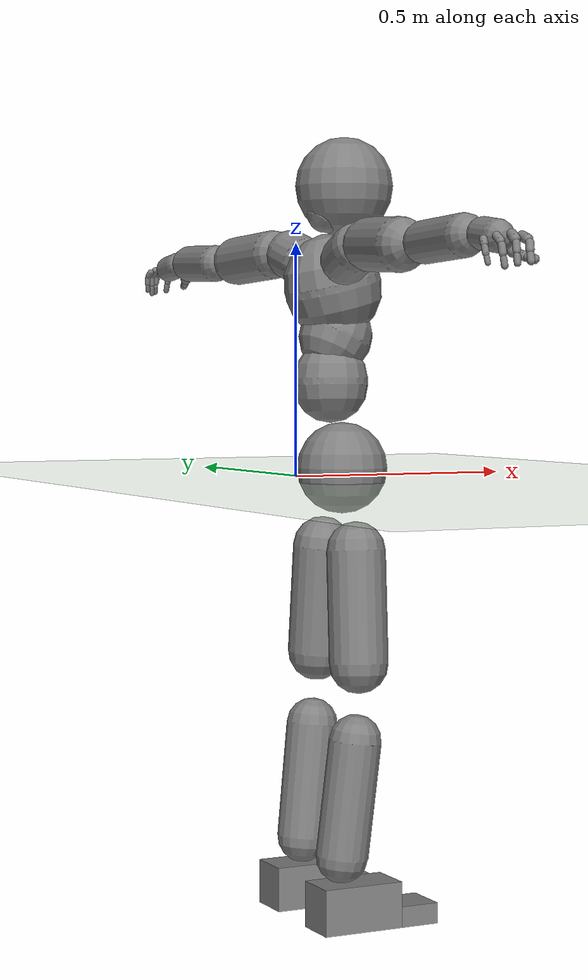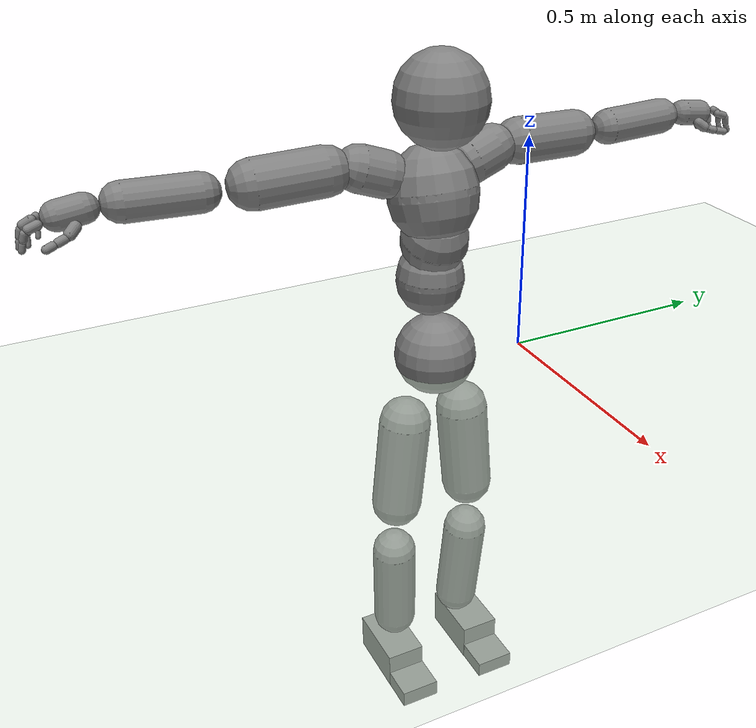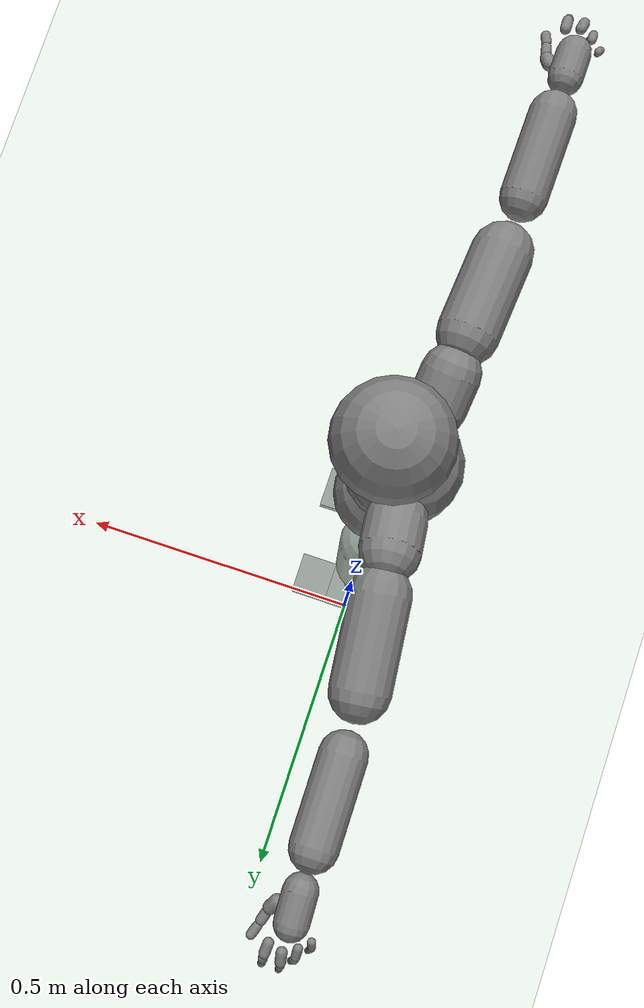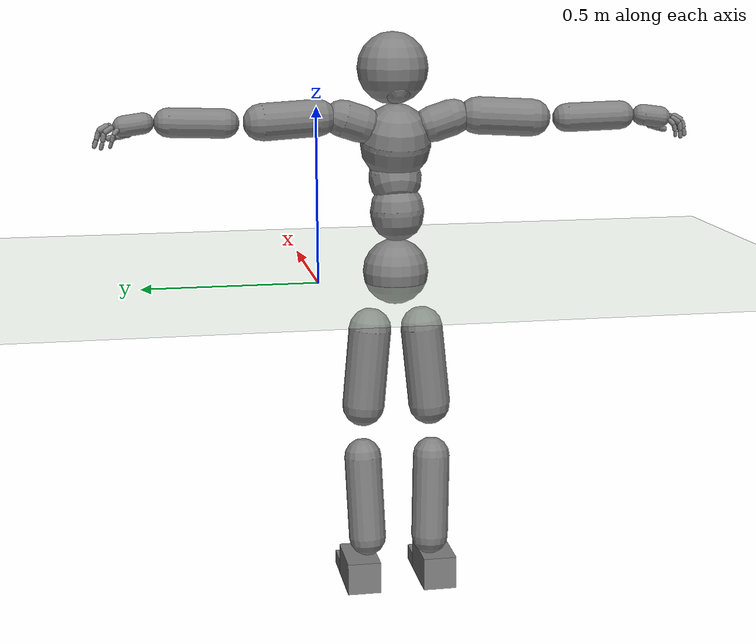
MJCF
<mujoco model="humanoid">
  <compiler coordinate="local"/>
  <statistic extent="2" center="0 0 1"/>
  <option timestep="0.00555"/>
  <default>
    <motor ctrlrange="-1 1" ctrllimited="true"/>
    <geom type="capsule" condim="1" friction="1.0 0.05 0.05" solimp=".9 .99 .003" solref=".015 1"/>
    <joint type="hinge" damping="0.1" stiffness="5" armature=".007" limited="true" solimplimit="0 .99 .01"/>
    <site size=".04" group="3"/>
    <default class="force-torque">
      <site type="box" size=".01 .01 .02" rgba="1 0 0 1"/>
    </default>
    <default class="touch">
      <site type="capsule" rgba="0 0 1 .3"/>
    </default>
  </default>
  <asset>
    <texture type="skybox" builtin="gradient" rgb1=".4 .5 .6" rgb2="0 0 0" width="100" height="100"/>
    <texture builtin="flat" height="1278" mark="cross" markrgb="1 1 1" name="texgeom" random="0.01" rgb1="0.8 0.6 0.4" rgb2="0.8 0.6 0.4" type="cube" width="127"/>
    <texture builtin="checker" height="100" name="texplane" rgb1="0 0 0" rgb2="0.8 0.8 0.8" type="2d" width="100"/>
    <material name="MatPlane" reflectance="0.5" shininess="1" specular="1" texrepeat="60 60" texture="texplane"/>
    <material name="geom" texture="texgeom" texuniform="true"/>
  </asset>
  <worldbody>
    <light cutoff="100" diffuse="1 1 1" dir="-0 0 -1.3" directional="true" exponent="1" pos="0 0 1.3" specular=".1 .1 .1"/>
    <geom conaffinity="1" condim="3" name="floor" pos="0 0 0" rgba="0.8 0.9 0.8 1" size="100 100 .2" type="plane" material="MatPlane"/>
    <body name="Pelvis" pos="-0.0018 -0.2233 0.0282">
      <freejoint name="Pelvis"/>
      <geom type="sphere" contype="1" conaffinity="1" density="4629.6296296296305" size="0.0942" pos="0.0000 0.0000 0.0000"/>
      <body name="L_Hip" pos="-0.0068 0.0695 -0.0914">
        <joint name="L_Hip_x" type="hinge" pos="0 0 0" axis="1 0 0" stiffness="500" damping="50" armature="0.02" range="-180.0000 180.0000"/>
        <joint name="L_Hip_y" type="hinge" pos="0 0 0" axis="0 1 0" stiffness="500" damping="50" armature="0.02" range="-180.0000 180.0000"/>
        <joint name="L_Hip_z" type="hinge" pos="0 0 0" axis="0 0 1" stiffness="500" damping="50" armature="0.02" range="-180.0000 180.0000"/>
        <geom type="capsule" contype="1" conaffinity="1" density="2040.816327" fromto="-0.0009 0.0069 -0.0750 -0.0036 0.0274 -0.3002" size="0.0615"/>
        <body name="L_Knee" pos="-0.0045 0.0343 -0.3752">
          <joint name="L_Knee_x" type="hinge" pos="0 0 0" axis="1 0 0" stiffness="500" damping="50" armature="0.02" range="-180.0000 180.0000"/>
          <joint name="L_Knee_y" type="hinge" pos="0 0 0" axis="0 1 0" stiffness="500" damping="50" armature="0.02" range="-180.0000 180.0000"/>
          <joint name="L_Knee_z" type="hinge" pos="0 0 0" axis="0 0 1" stiffness="500" damping="50" armature="0.02" range="-180.0000 180.0000"/>
          <geom type="capsule" contype="1" conaffinity="1" density="1234.567901" fromto="-0.0087 -0.0027 -0.0796 -0.0350 -0.0109 -0.3184" size="0.0541"/>
          <body name="L_Ankle" pos="-0.0437 -0.0136 -0.398">
            <joint name="L_Ankle_x" type="hinge" pos="0 0 0" axis="1 0 0" stiffness="400" damping="40" armature="0.02" range="-180.0000 180.0000"/>
            <joint name="L_Ankle_y" type="hinge" pos="0 0 0" axis="0 1 0" stiffness="400" damping="40" armature="0.02" range="-180.0000 180.0000"/>
            <joint name="L_Ankle_z" type="hinge" pos="0 0 0" axis="0 0 1" stiffness="400" damping="40" armature="0.02" range="-180.0000 180.0000"/>
            <geom density="" type="box" pos="0.0242 0.0233 -0.0239" size="0.085 0.0483 0.0464" quat="1.0000 0.0000 0.0000 0.0000"/>
            <body name="L_Toe" pos="0.1193 0.0264 -0.0558">
              <joint name="L_Toe_x" type="hinge" pos="0 0 0" axis="1 0 0" stiffness="200" damping="20" armature="0.02" range="-180.0000 180.0000"/>
              <joint name="L_Toe_y" type="hinge" pos="0 0 0" axis="0 1 0" stiffness="200" damping="20" armature="0.02" range="-180.0000 180.0000"/>
              <joint name="L_Toe_z" type="hinge" pos="0 0 0" axis="0 0 1" stiffness="200" damping="20" armature="0.02" range="-180.0000 180.0000"/>
              <geom density="" type="box" pos="0.0248 -0.0030 0.0055" size="0.0496 0.0478 0.02" quat="1.0000 0.0000 0.0000 0.0000"/>
            </body>
          </body>
        </body>
      </body>
      <body name="R_Hip" pos="-0.0043 -0.0677 -0.0905">
        <joint name="R_Hip_x" type="hinge" pos="0 0 0" axis="1 0 0" stiffness="500" damping="50" armature="0.02" range="-180.0000 180.0000"/>
        <joint name="R_Hip_y" type="hinge" pos="0 0 0" axis="0 1 0" stiffness="500" damping="50" armature="0.02" range="-180.0000 180.0000"/>
        <joint name="R_Hip_z" type="hinge" pos="0 0 0" axis="0 0 1" stiffness="500" damping="50" armature="0.02" range="-180.0000 180.0000"/>
        <geom type="capsule" contype="1" conaffinity="1" density="2040.816327" fromto="-0.0018 -0.0077 -0.0765 -0.0071 -0.0306 -0.3061" size="0.0606"/>
        <body name="R_Knee" pos="-0.0089 -0.0383 -0.3826">
          <joint name="R_Knee_x" type="hinge" pos="0 0 0" axis="1 0 0" stiffness="500" damping="50" armature="0.02" range="-180.0000 180.0000"/>
          <joint name="R_Knee_y" type="hinge" pos="0 0 0" axis="0 1 0" stiffness="500" damping="50" armature="0.02" range="-180.0000 180.0000"/>
          <joint name="R_Knee_z" type="hinge" pos="0 0 0" axis="0 0 1" stiffness="500" damping="50" armature="0.02" range="-180.0000 180.0000"/>
          <geom type="capsule" contype="1" conaffinity="1" density="1234.567901" fromto="-0.0085 0.0032 -0.0797 -0.0338 0.0126 -0.3187" size="0.0541"/>
          <body name="R_Ankle" pos="-0.0423 0.0158 -0.3984">
            <joint name="R_Ankle_x" type="hinge" pos="0 0 0" axis="1 0 0" stiffness="400" damping="40" armature="0.02" range="-180.0000 180.0000"/>
            <joint name="R_Ankle_y" type="hinge" pos="0 0 0" axis="0 1 0" stiffness="400" damping="40" armature="0.02" range="-180.0000 180.0000"/>
            <joint name="R_Ankle_z" type="hinge" pos="0 0 0" axis="0 0 1" stiffness="400" damping="40" armature="0.02" range="-180.0000 180.0000"/>
            <geom density="" type="box" pos="0.0256 -0.0212 -0.0174" size="0.0865 0.0483 0.0478" quat="1.0000 0.0000 0.0000 0.0000"/>
            <body name="R_Toe" pos="0.1233 -0.0254 -0.0481">
              <joint name="R_Toe_x" type="hinge" pos="0 0 0" axis="1 0 0" stiffness="200" damping="20" armature="0.02" range="-180.0000 180.0000"/>
              <joint name="R_Toe_y" type="hinge" pos="0 0 0" axis="0 1 0" stiffness="200" damping="20" armature="0.02" range="-180.0000 180.0000"/>
              <joint name="R_Toe_z" type="hinge" pos="0 0 0" axis="0 0 1" stiffness="200" damping="20" armature="0.02" range="-180.0000 180.0000"/>
              <geom density="" type="box" pos="0.0227 0.0042 0.0045" size="0.0493 0.0479 0.0216" quat="1.0000 0.0000 0.0000 0.0000"/>
            </body>
          </body>
        </body>
      </body>
      <body name="Torso" pos="-0.0267 -0.0025 0.109">
        <joint name="Torso_x" type="hinge" pos="0 0 0" axis="1 0 0" stiffness="1000" damping="100" armature="0.02" range="-180.0000 180.0000"/>
        <joint name="Torso_y" type="hinge" pos="0 0 0" axis="0 1 0" stiffness="1000" damping="100" armature="0.02" range="-180.0000 180.0000"/>
        <joint name="Torso_z" type="hinge" pos="0 0 0" axis="0 0 1" stiffness="1000" damping="100" armature="0.02" range="-180.0000 180.0000"/>
        <geom type="capsule" contype="1" conaffinity="1" density="2040.816327" fromto="0.0005 0.0025 0.0608 0.0006 0.0030 0.0743" size="0.0769"/>
        <body name="Spine" pos="0.0011 0.0055 0.1352">
          <joint name="Spine_x" type="hinge" pos="0 0 0" axis="1 0 0" stiffness="1000" damping="100" armature="0.02" range="-180.0000 180.0000"/>
          <joint name="Spine_y" type="hinge" pos="0 0 0" axis="0 1 0" stiffness="1000" damping="100" armature="0.02" range="-180.0000 180.0000"/>
          <joint name="Spine_z" type="hinge" pos="0 0 0" axis="0 0 1" stiffness="1000" damping="100" armature="0.02" range="-180.0000 180.0000"/>
          <geom type="capsule" contype="1" conaffinity="1" density="2040.816327" fromto="0.0114 0.0007 0.0238 0.0140 0.0008 0.0291" size="0.0755"/>
          <body name="Chest" pos="0.0254 0.0015 0.0529">
            <joint name="Chest_x" type="hinge" pos="0 0 0" axis="1 0 0" stiffness="1000" damping="100" armature="0.02" range="-180.0000 180.0000"/>
            <joint name="Chest_y" type="hinge" pos="0 0 0" axis="0 1 0" stiffness="1000" damping="100" armature="0.02" range="-180.0000 180.0000"/>
            <joint name="Chest_z" type="hinge" pos="0 0 0" axis="0 0 1" stiffness="1000" damping="100" armature="0.02" range="-180.0000 180.0000"/>
            <geom type="capsule" contype="1" conaffinity="1" density="2040.816327" fromto="-0.0173 -0.0009 0.0682 -0.0212 -0.0010 0.0833" size="0.1002"/>
            <body name="Neck" pos="-0.0429 -0.0028 0.2139">
              <joint name="Neck_x" type="hinge" pos="0 0 0" axis="1 0 0" stiffness="100" damping="10" armature="0.02" range="-180.0000 180.0000"/>
              <joint name="Neck_y" type="hinge" pos="0 0 0" axis="0 1 0" stiffness="100" damping="10" armature="0.02" range="-180.0000 180.0000"/>
              <joint name="Neck_z" type="hinge" pos="0 0 0" axis="0 0 1" stiffness="100" damping="10" armature="0.02" range="-180.0000 180.0000"/>
              <geom type="capsule" contype="1" conaffinity="1" density="1000" fromto="0.0103 0.0010 0.0130 0.0411 0.0041 0.0520" size="0.0436"/>
              <body name="Head" pos="0.0513 0.0052 0.065">
                <joint name="Head_x" type="hinge" pos="0 0 0" axis="1 0 0" stiffness="100" damping="10" armature="0.02" range="-180.0000 180.0000"/>
                <joint name="Head_y" type="hinge" pos="0 0 0" axis="0 1 0" stiffness="100" damping="10" armature="0.02" range="-180.0000 180.0000"/>
                <joint name="Head_z" type="hinge" pos="0 0 0" axis="0 0 1" stiffness="100" damping="10" armature="0.02" range="-180.0000 180.0000"/>
                <geom type="sphere" contype="1" conaffinity="1" density="1000" size="0.1011" pos="0.0000 0.0000 0.0000"/>
              </body>
            </body>
            <body name="L_Thorax" pos="-0.0341 0.0788 0.1217">
              <joint name="L_Thorax_x" type="hinge" pos="0 0 0" axis="1 0 0" stiffness="400" damping="40" armature="0.02" range="-180.0000 180.0000"/>
              <joint name="L_Thorax_y" type="hinge" pos="0 0 0" axis="0 1 0" stiffness="400" damping="40" armature="0.02" range="-180.0000 180.0000"/>
              <joint name="L_Thorax_z" type="hinge" pos="0 0 0" axis="0 0 1" stiffness="400" damping="40" armature="0.02" range="-180.0000 180.0000"/>
              <geom type="capsule" contype="1" conaffinity="1" density="1000" fromto="-0.0018 0.0182 0.0061 -0.0071 0.0728 0.0244" size="0.0521"/>
              <body name="L_Shoulder" pos="-0.0089 0.091 0.0305">
                <joint name="L_Shoulder_x" type="hinge" pos="0 0 0" axis="1 0 0" stiffness="400" damping="40" armature="0.02" range="-180.0000 180.0000"/>
                <joint name="L_Shoulder_y" type="hinge" pos="0 0 0" axis="0 1 0" stiffness="400" damping="40" armature="0.02" range="-180.0000 180.0000"/>
                <joint name="L_Shoulder_z" type="hinge" pos="0 0 0" axis="0 0 1" stiffness="400" damping="40" armature="0.02" range="-180.0000 180.0000"/>
                <geom type="capsule" contype="1" conaffinity="1" density="1000" fromto="-0.0055 0.0519 -0.0026 -0.0220 0.2077 -0.0102" size="0.0517"/>
                <body name="L_Elbow" pos="-0.0275 0.2596 -0.0128">
                  <joint name="L_Elbow_x" type="hinge" pos="0 0 0" axis="1 0 0" stiffness="300" damping="30" armature="0.02" range="-720.0000 720.0000"/>
                  <joint name="L_Elbow_y" type="hinge" pos="0 0 0" axis="0 1 0" stiffness="300" damping="30" armature="0.02" range="-720.0000 720.0000"/>
                  <joint name="L_Elbow_z" type="hinge" pos="0 0 0" axis="0 0 1" stiffness="300" damping="30" armature="0.02" range="-720.0000 720.0000"/>
                  <geom type="capsule" contype="1" conaffinity="1" density="1000" fromto="-0.0002 0.0498 0.0018 -0.0009 0.1994 0.0072" size="0.0405"/>
                  <body name="L_Wrist" pos="-0.0012 0.2492 0.009">
                    <joint name="L_Wrist_x" type="hinge" pos="0 0 0" axis="1 0 0" stiffness="100" damping="10" armature="0.02" range="-180.0000 180.0000"/>
                    <joint name="L_Wrist_y" type="hinge" pos="0 0 0" axis="0 1 0" stiffness="100" damping="10" armature="0.02" range="-180.0000 180.0000"/>
                    <joint name="L_Wrist_z" type="hinge" pos="0 0 0" axis="0 0 1" stiffness="100" damping="10" armature="0.02" range="-180.0000 180.0000"/>
                    <geom type="capsule" contype="1" conaffinity="1" density="1000" fromto="-0.0007 0.0175 -0.0023 -0.0029 0.0699 -0.0092" size="0.0291"/>
                    <body name="L_Index1" pos="0.0215 0.1025 -0.009">
                      <joint name="L_Index1_x" type="hinge" pos="0 0 0" axis="1 0 0" stiffness="100" damping="10" armature="0.02" range="-180.0000 180.0000"/>
                      <joint name="L_Index1_y" type="hinge" pos="0 0 0" axis="0 1 0" stiffness="100" damping="10" armature="0.02" range="-180.0000 180.0000"/>
                      <joint name="L_Index1_z" type="hinge" pos="0 0 0" axis="0 0 1" stiffness="100" damping="10" armature="0.02" range="-180.0000 180.0000"/>
                      <geom type="capsule" contype="1" conaffinity="1" density="1000" fromto="0.0003 0.0061 -0.0021 0.0012 0.0242 -0.0084" size="0.009"/>
                      <body name="L_Index2" pos="0.0015 0.0303 -0.0105">
                        <joint name="L_Index2_x" type="hinge" pos="0 0 0" axis="1 0 0" stiffness="100" damping="10" armature="0.02" range="-180.0000 180.0000"/>
                        <joint name="L_Index2_y" type="hinge" pos="0 0 0" axis="0 1 0" stiffness="100" damping="10" armature="0.02" range="-180.0000 180.0000"/>
                        <joint name="L_Index2_z" type="hinge" pos="0 0 0" axis="0 0 1" stiffness="100" damping="10" armature="0.02" range="-180.0000 180.0000"/>
                        <geom type="capsule" contype="1" conaffinity="1" density="1000" fromto="-0.0003 0.0014 -0.0043 -0.0014 0.0056 -0.0170" size="0.0073"/>
                        <body name="L_Index3" pos="-0.0017 0.007 -0.0213">
                          <joint name="L_Index3_x" type="hinge" pos="0 0 0" axis="1 0 0" stiffness="100" damping="10" armature="0.02" range="-180.0000 180.0000"/>
                          <joint name="L_Index3_y" type="hinge" pos="0 0 0" axis="0 1 0" stiffness="100" damping="10" armature="0.02" range="-180.0000 180.0000"/>
                          <joint name="L_Index3_z" type="hinge" pos="0 0 0" axis="0 0 1" stiffness="100" damping="10" armature="0.02" range="-180.0000 180.0000"/>
                          <geom type="capsule" contype="1" conaffinity="1" density="1000" fromto="0.0001 0.0018 -0.0039 0.0002 0.0072 -0.0154" size="0.0065"/>
                        </body>
                      </body>
                    </body>
                    <body name="L_Middle1" pos="-0.0013 0.1098 -0.0061">
                      <joint name="L_Middle1_x" type="hinge" pos="0 0 0" axis="1 0 0" stiffness="100" damping="10" armature="0.02" range="-180.0000 180.0000"/>
                      <joint name="L_Middle1_y" type="hinge" pos="0 0 0" axis="0 1 0" stiffness="100" damping="10" armature="0.02" range="-180.0000 180.0000"/>
                      <joint name="L_Middle1_z" type="hinge" pos="0 0 0" axis="0 0 1" stiffness="100" damping="10" armature="0.02" range="-180.0000 180.0000"/>
                      <geom type="capsule" contype="1" conaffinity="1" density="1000" fromto="-0.0009 0.0053 -0.0030 -0.0038 0.0213 -0.0119" size="0.0091"/>
                      <body name="L_Middle2" pos="-0.0047 0.0266 -0.0148">
                        <joint name="L_Middle2_x" type="hinge" pos="0 0 0" axis="1 0 0" stiffness="100" damping="10" armature="0.02" range="-180.0000 180.0000"/>
                        <joint name="L_Middle2_y" type="hinge" pos="0 0 0" axis="0 1 0" stiffness="100" damping="10" armature="0.02" range="-180.0000 180.0000"/>
                        <joint name="L_Middle2_z" type="hinge" pos="0 0 0" axis="0 0 1" stiffness="100" damping="10" armature="0.02" range="-180.0000 180.0000"/>
                        <geom type="capsule" contype="1" conaffinity="1" density="1000" fromto="-0.0003 0.0011 -0.0046 -0.0012 0.0045 -0.0185" size="0.0068"/>
                        <body name="L_Middle3" pos="-0.0014 0.0057 -0.0231">
                          <joint name="L_Middle3_x" type="hinge" pos="0 0 0" axis="1 0 0" stiffness="100" damping="10" armature="0.02" range="-180.0000 180.0000"/>
                          <joint name="L_Middle3_y" type="hinge" pos="0 0 0" axis="0 1 0" stiffness="100" damping="10" armature="0.02" range="-180.0000 180.0000"/>
                          <joint name="L_Middle3_z" type="hinge" pos="0 0 0" axis="0 0 1" stiffness="100" damping="10" armature="0.02" range="-180.0000 180.0000"/>
                          <geom type="capsule" contype="1" conaffinity="1" density="1000" fromto="0.0001 0.0015 -0.0042 0.0004 0.0061 -0.0169" size="0.0061"/>
                        </body>
                      </body>
                    </body>
                    <body name="L_Pinky1" pos="-0.0406 0.0846 -0.0138">
                      <joint name="L_Pinky1_x" type="hinge" pos="0 0 0" axis="1 0 0" stiffness="100" damping="10" armature="0.02" range="-180.0000 180.0000"/>
                      <joint name="L_Pinky1_y" type="hinge" pos="0 0 0" axis="0 1 0" stiffness="100" damping="10" armature="0.02" range="-180.0000 180.0000"/>
                      <joint name="L_Pinky1_z" type="hinge" pos="0 0 0" axis="0 0 1" stiffness="100" damping="10" armature="0.02" range="-180.0000 180.0000"/>
                      <geom type="capsule" contype="1" conaffinity="1" density="1000" fromto="-0.0009 0.0026 -0.0027 -0.0036 0.0102 -0.0108" size="0.0069"/>
                      <body name="L_Pinky2" pos="-0.0045 0.0128 -0.0135">
                        <joint name="L_Pinky2_x" type="hinge" pos="0 0 0" axis="1 0 0" stiffness="100" damping="10" armature="0.02" range="-180.0000 180.0000"/>
                        <joint name="L_Pinky2_y" type="hinge" pos="0 0 0" axis="0 1 0" stiffness="100" damping="10" armature="0.02" range="-180.0000 180.0000"/>
                        <joint name="L_Pinky2_z" type="hinge" pos="0 0 0" axis="0 0 1" stiffness="100" damping="10" armature="0.02" range="-180.0000 180.0000"/>
                        <geom type="capsule" contype="1" conaffinity="1" density="1000" fromto="0.0002 0.0009 -0.0037 0.0009 0.0035 -0.0147" size="0.0062"/>
                        <body name="L_Pinky3" pos="0.0011 0.0044 -0.0183">
                          <joint name="L_Pinky3_x" type="hinge" pos="0 0 0" axis="1 0 0" stiffness="100" damping="10" armature="0.02" range="-180.0000 180.0000"/>
                          <joint name="L_Pinky3_y" type="hinge" pos="0 0 0" axis="0 1 0" stiffness="100" damping="10" armature="0.02" range="-180.0000 180.0000"/>
                          <joint name="L_Pinky3_z" type="hinge" pos="0 0 0" axis="0 0 1" stiffness="100" damping="10" armature="0.02" range="-180.0000 180.0000"/>
                          <geom type="capsule" contype="1" conaffinity="1" density="1000" fromto="0.0006 0.0013 -0.0033 0.0025 0.0051 -0.0131" size="0.0051"/>
                        </body>
                      </body>
                    </body>
                    <body name="L_Ring1" pos="-0.0243 0.0978 -0.0087">
                      <joint name="L_Ring1_x" type="hinge" pos="0 0 0" axis="1 0 0" stiffness="100" damping="10" armature="0.02" range="-180.0000 180.0000"/>
                      <joint name="L_Ring1_y" type="hinge" pos="0 0 0" axis="0 1 0" stiffness="100" damping="10" armature="0.02" range="-180.0000 180.0000"/>
                      <joint name="L_Ring1_z" type="hinge" pos="0 0 0" axis="0 0 1" stiffness="100" damping="10" armature="0.02" range="-180.0000 180.0000"/>
                      <geom type="capsule" contype="1" conaffinity="1" density="1000" fromto="-0.0002 0.0047 -0.0031 -0.0008 0.0188 -0.0125" size="0.0078"/>
                      <body name="L_Ring2" pos="-0.0011 0.0235 -0.0157">
                        <joint name="L_Ring2_x" type="hinge" pos="0 0 0" axis="1 0 0" stiffness="100" damping="10" armature="0.02" range="-180.0000 180.0000"/>
                        <joint name="L_Ring2_y" type="hinge" pos="0 0 0" axis="0 1 0" stiffness="100" damping="10" armature="0.02" range="-180.0000 180.0000"/>
                        <joint name="L_Ring2_z" type="hinge" pos="0 0 0" axis="0 0 1" stiffness="100" damping="10" armature="0.02" range="-180.0000 180.0000"/>
                        <geom type="capsule" contype="1" conaffinity="1" density="1000" fromto="0.0003 0.0009 -0.0046 0.0010 0.0035 -0.0185" size="0.0071"/>
                        <body name="L_Ring3" pos="0.0013 0.0044 -0.0232">
                          <joint name="L_Ring3_x" type="hinge" pos="0 0 0" axis="1 0 0" stiffness="100" damping="10" armature="0.02" range="-180.0000 180.0000"/>
                          <joint name="L_Ring3_y" type="hinge" pos="0 0 0" axis="0 1 0" stiffness="100" damping="10" armature="0.02" range="-180.0000 180.0000"/>
                          <joint name="L_Ring3_z" type="hinge" pos="0 0 0" axis="0 0 1" stiffness="100" damping="10" armature="0.02" range="-180.0000 180.0000"/>
                          <geom type="capsule" contype="1" conaffinity="1" density="1000" fromto="0.0007 0.0013 -0.0042 0.0026 0.0051 -0.0169" size="0.0058"/>
                        </body>
                      </body>
                    </body>
                    <body name="L_Thumb1" pos="0.0265 0.0419 -0.0199">
                      <joint name="L_Thumb1_x" type="hinge" pos="0 0 0" axis="1 0 0" stiffness="100" damping="10" armature="0.02" range="-180.0000 180.0000"/>
                      <joint name="L_Thumb1_y" type="hinge" pos="0 0 0" axis="0 1 0" stiffness="100" damping="10" armature="0.02" range="-180.0000 180.0000"/>
                      <joint name="L_Thumb1_z" type="hinge" pos="0 0 0" axis="0 0 1" stiffness="100" damping="10" armature="0.02" range="-180.0000 180.0000"/>
                      <geom type="capsule" contype="1" conaffinity="1" density="1000" fromto="0.0023 0.0045 -0.0033 0.0092 0.0178 -0.0132" size="0.012"/>
                      <body name="L_Thumb2" pos="0.0115 0.0223 -0.0165">
                        <joint name="L_Thumb2_x" type="hinge" pos="0 0 0" axis="1 0 0" stiffness="100" damping="10" armature="0.02" range="-180.0000 180.0000"/>
                        <joint name="L_Thumb2_y" type="hinge" pos="0 0 0" axis="0 1 0" stiffness="100" damping="10" armature="0.02" range="-180.0000 180.0000"/>
                        <joint name="L_Thumb2_z" type="hinge" pos="0 0 0" axis="0 0 1" stiffness="100" damping="10" armature="0.02" range="-180.0000 180.0000"/>
                        <geom type="capsule" contype="1" conaffinity="1" density="1000" fromto="0.0013 0.0049 -0.0013 0.0051 0.0196 -0.0053" size="0.009"/>
                        <body name="L_Thumb3" pos="0.0063 0.0245 -0.0066">
                          <joint name="L_Thumb3_x" type="hinge" pos="0 0 0" axis="1 0 0" stiffness="100" damping="10" armature="0.02" range="-180.0000 180.0000"/>
                          <joint name="L_Thumb3_y" type="hinge" pos="0 0 0" axis="0 1 0" stiffness="100" damping="10" armature="0.02" range="-180.0000 180.0000"/>
                          <joint name="L_Thumb3_z" type="hinge" pos="0 0 0" axis="0 0 1" stiffness="100" damping="10" armature="0.02" range="-180.0000 180.0000"/>
                          <geom type="capsule" contype="1" conaffinity="1" density="1000" fromto="0.0017 0.0053 -0.0009 0.0067 0.0212 -0.0037" size="0.0083"/>
                        </body>
                      </body>
                    </body>
                  </body>
                </body>
              </body>
            </body>
            <body name="R_Thorax" pos="-0.0386 -0.0818 0.1188">
              <joint name="R_Thorax_x" type="hinge" pos="0 0 0" axis="1 0 0" stiffness="400" damping="40" armature="0.02" range="-180.0000 180.0000"/>
              <joint name="R_Thorax_y" type="hinge" pos="0 0 0" axis="0 1 0" stiffness="400" damping="40" armature="0.02" range="-180.0000 180.0000"/>
              <joint name="R_Thorax_z" type="hinge" pos="0 0 0" axis="0 0 1" stiffness="400" damping="40" armature="0.02" range="-180.0000 180.0000"/>
              <geom type="capsule" contype="1" conaffinity="1" density="1000" fromto="-0.0018 -0.0192 0.0065 -0.0073 -0.0768 0.0260" size="0.0511"/>
              <body name="R_Shoulder" pos="-0.0091 -0.096 0.0326">
                <joint name="R_Shoulder_x" type="hinge" pos="0 0 0" axis="1 0 0" stiffness="400" damping="40" armature="0.02" range="-180.0000 180.0000"/>
                <joint name="R_Shoulder_y" type="hinge" pos="0 0 0" axis="0 1 0" stiffness="400" damping="40" armature="0.02" range="-180.0000 180.0000"/>
                <joint name="R_Shoulder_z" type="hinge" pos="0 0 0" axis="0 0 1" stiffness="400" damping="40" armature="0.02" range="-180.0000 180.0000"/>
                <geom type="capsule" contype="1" conaffinity="1" density="1000" fromto="-0.0043 -0.0507 -0.0027 -0.0171 -0.2030 -0.0107" size="0.0531"/>
                <body name="R_Elbow" pos="-0.0214 -0.2537 -0.0133">
                  <joint name="R_Elbow_x" type="hinge" pos="0 0 0" axis="1 0 0" stiffness="300" damping="30" armature="0.02" range="-720.0000 720.0000"/>
                  <joint name="R_Elbow_y" type="hinge" pos="0 0 0" axis="0 1 0" stiffness="300" damping="30" armature="0.02" range="-720.0000 720.0000"/>
                  <joint name="R_Elbow_z" type="hinge" pos="0 0 0" axis="0 0 1" stiffness="300" damping="30" armature="0.02" range="-720.0000 720.0000"/>
                  <geom type="capsule" contype="1" conaffinity="1" density="1000" fromto="-0.0011 -0.0511 0.0016 -0.0044 -0.2042 0.0062" size="0.0408"/>
                  <body name="R_Wrist" pos="-0.0056 -0.2553 0.0078">
                    <joint name="R_Wrist_x" type="hinge" pos="0 0 0" axis="1 0 0" stiffness="100" damping="10" armature="0.02" range="-180.0000 180.0000"/>
                    <joint name="R_Wrist_y" type="hinge" pos="0 0 0" axis="0 1 0" stiffness="100" damping="10" armature="0.02" range="-180.0000 180.0000"/>
                    <joint name="R_Wrist_z" type="hinge" pos="0 0 0" axis="0 0 1" stiffness="100" damping="10" armature="0.02" range="-180.0000 180.0000"/>
                    <geom type="capsule" contype="1" conaffinity="1" density="1000" fromto="-0.0003 -0.0169 -0.0022 -0.0011 -0.0677 -0.0090" size="0.03"/>
                    <body name="R_Index1" pos="0.0246 -0.0993 -0.0086">
                      <joint name="R_Index1_x" type="hinge" pos="0 0 0" axis="1 0 0" stiffness="100" damping="10" armature="0.02" range="-180.0000 180.0000"/>
                      <joint name="R_Index1_y" type="hinge" pos="0 0 0" axis="0 1 0" stiffness="100" damping="10" armature="0.02" range="-180.0000 180.0000"/>
                      <joint name="R_Index1_z" type="hinge" pos="0 0 0" axis="0 0 1" stiffness="100" damping="10" armature="0.02" range="-180.0000 180.0000"/>
                      <geom type="capsule" contype="1" conaffinity="1" density="1000" fromto="0.0001 -0.0061 -0.0021 0.0005 -0.0245 -0.0084" size="0.0094"/>
                      <body name="R_Index2" pos="0.0006 -0.0306 -0.0106">
                        <joint name="R_Index2_x" type="hinge" pos="0 0 0" axis="1 0 0" stiffness="100" damping="10" armature="0.02" range="-180.0000 180.0000"/>
                        <joint name="R_Index2_y" type="hinge" pos="0 0 0" axis="0 1 0" stiffness="100" damping="10" armature="0.02" range="-180.0000 180.0000"/>
                        <joint name="R_Index2_z" type="hinge" pos="0 0 0" axis="0 0 1" stiffness="100" damping="10" armature="0.02" range="-180.0000 180.0000"/>
                        <geom type="capsule" contype="1" conaffinity="1" density="1000" fromto="-0.0006 -0.0014 -0.0042 -0.0022 -0.0056 -0.0169" size="0.0077"/>
                        <body name="R_Index3" pos="-0.0028 -0.007 -0.0211">
                          <joint name="R_Index3_x" type="hinge" pos="0 0 0" axis="1 0 0" stiffness="100" damping="10" armature="0.02" range="-180.0000 180.0000"/>
                          <joint name="R_Index3_y" type="hinge" pos="0 0 0" axis="0 1 0" stiffness="100" damping="10" armature="0.02" range="-180.0000 180.0000"/>
                          <joint name="R_Index3_z" type="hinge" pos="0 0 0" axis="0 0 1" stiffness="100" damping="10" armature="0.02" range="-180.0000 180.0000"/>
                          <geom type="capsule" contype="1" conaffinity="1" density="1000" fromto="-0.0002 -0.0010 -0.0038 -0.0006 -0.0040 -0.0153" size="0.0069"/>
                        </body>
                      </body>
                    </body>
                    <body name="R_Middle1" pos="0.0008 -0.1072 -0.0055">
                      <joint name="R_Middle1_x" type="hinge" pos="0 0 0" axis="1 0 0" stiffness="100" damping="10" armature="0.02" range="-180.0000 180.0000"/>
                      <joint name="R_Middle1_y" type="hinge" pos="0 0 0" axis="0 1 0" stiffness="100" damping="10" armature="0.02" range="-180.0000 180.0000"/>
                      <joint name="R_Middle1_z" type="hinge" pos="0 0 0" axis="0 0 1" stiffness="100" damping="10" armature="0.02" range="-180.0000 180.0000"/>
                      <geom type="capsule" contype="1" conaffinity="1" density="1000" fromto="-0.0010 -0.0053 -0.0029 -0.0039 -0.0212 -0.0116" size="0.0095"/>
                      <body name="R_Middle2" pos="-0.0049 -0.0266 -0.0145">
                        <joint name="R_Middle2_x" type="hinge" pos="0 0 0" axis="1 0 0" stiffness="100" damping="10" armature="0.02" range="-180.0000 180.0000"/>
                        <joint name="R_Middle2_y" type="hinge" pos="0 0 0" axis="0 1 0" stiffness="100" damping="10" armature="0.02" range="-180.0000 180.0000"/>
                        <joint name="R_Middle2_z" type="hinge" pos="0 0 0" axis="0 0 1" stiffness="100" damping="10" armature="0.02" range="-180.0000 180.0000"/>
                        <geom type="capsule" contype="1" conaffinity="1" density="1000" fromto="-0.0004 -0.0011 -0.0046 -0.0015 -0.0044 -0.0182" size="0.0071"/>
                        <body name="R_Middle3" pos="-0.0019 -0.0055 -0.0228">
                          <joint name="R_Middle3_x" type="hinge" pos="0 0 0" axis="1 0 0" stiffness="100" damping="10" armature="0.02" range="-180.0000 180.0000"/>
                          <joint name="R_Middle3_y" type="hinge" pos="0 0 0" axis="0 1 0" stiffness="100" damping="10" armature="0.02" range="-180.0000 180.0000"/>
                          <joint name="R_Middle3_z" type="hinge" pos="0 0 0" axis="0 0 1" stiffness="100" damping="10" armature="0.02" range="-180.0000 180.0000"/>
                          <geom type="capsule" contype="1" conaffinity="1" density="1000" fromto="0.0000 -0.0007 -0.0042 0.0001 -0.0028 -0.0166" size="0.0064"/>
                        </body>
                      </body>
                    </body>
                    <body name="R_Pinky1" pos="-0.0394 -0.083 -0.0136">
                      <joint name="R_Pinky1_x" type="hinge" pos="0 0 0" axis="1 0 0" stiffness="100" damping="10" armature="0.02" range="-180.0000 180.0000"/>
                      <joint name="R_Pinky1_y" type="hinge" pos="0 0 0" axis="0 1 0" stiffness="100" damping="10" armature="0.02" range="-180.0000 180.0000"/>
                      <joint name="R_Pinky1_z" type="hinge" pos="0 0 0" axis="0 0 1" stiffness="100" damping="10" armature="0.02" range="-180.0000 180.0000"/>
                      <geom type="capsule" contype="1" conaffinity="1" density="1000" fromto="-0.0010 -0.0025 -0.0027 -0.0039 -0.0102 -0.0108" size="0.007"/>
                      <body name="R_Pinky2" pos="-0.0048 -0.0127 -0.0135">
                        <joint name="R_Pinky2_x" type="hinge" pos="0 0 0" axis="1 0 0" stiffness="100" damping="10" armature="0.02" range="-180.0000 180.0000"/>
                        <joint name="R_Pinky2_y" type="hinge" pos="0 0 0" axis="0 1 0" stiffness="100" damping="10" armature="0.02" range="-180.0000 180.0000"/>
                        <joint name="R_Pinky2_z" type="hinge" pos="0 0 0" axis="0 0 1" stiffness="100" damping="10" armature="0.02" range="-180.0000 180.0000"/>
                        <geom type="capsule" contype="1" conaffinity="1" density="1000" fromto="0.0002 -0.0009 -0.0036 0.0007 -0.0036 -0.0145" size="0.0063"/>
                        <body name="R_Pinky3" pos="0.0009 -0.0045 -0.0181">
                          <joint name="R_Pinky3_x" type="hinge" pos="0 0 0" axis="1 0 0" stiffness="100" damping="10" armature="0.02" range="-180.0000 180.0000"/>
                          <joint name="R_Pinky3_y" type="hinge" pos="0 0 0" axis="0 1 0" stiffness="100" damping="10" armature="0.02" range="-180.0000 180.0000"/>
                          <joint name="R_Pinky3_z" type="hinge" pos="0 0 0" axis="0 0 1" stiffness="100" damping="10" armature="0.02" range="-180.0000 180.0000"/>
                          <geom type="capsule" contype="1" conaffinity="1" density="1000" fromto="0.0006 -0.0005 -0.0032 0.0023 -0.0020 -0.0129" size="0.0051"/>
                        </body>
                      </body>
                    </body>
                    <body name="R_Ring1" pos="-0.0229 -0.0958 -0.0083">
                      <joint name="R_Ring1_x" type="hinge" pos="0 0 0" axis="1 0 0" stiffness="100" damping="10" armature="0.02" range="-180.0000 180.0000"/>
                      <joint name="R_Ring1_y" type="hinge" pos="0 0 0" axis="0 1 0" stiffness="100" damping="10" armature="0.02" range="-180.0000 180.0000"/>
                      <joint name="R_Ring1_z" type="hinge" pos="0 0 0" axis="0 0 1" stiffness="100" damping="10" armature="0.02" range="-180.0000 180.0000"/>
                      <geom type="capsule" contype="1" conaffinity="1" density="1000" fromto="-0.0003 -0.0047 -0.0031 -0.0010 -0.0187 -0.0124" size="0.0079"/>
                      <body name="R_Ring2" pos="-0.0013 -0.0233 -0.0155">
                        <joint name="R_Ring2_x" type="hinge" pos="0 0 0" axis="1 0 0" stiffness="100" damping="10" armature="0.02" range="-180.0000 180.0000"/>
                        <joint name="R_Ring2_y" type="hinge" pos="0 0 0" axis="0 1 0" stiffness="100" damping="10" armature="0.02" range="-180.0000 180.0000"/>
                        <joint name="R_Ring2_z" type="hinge" pos="0 0 0" axis="0 0 1" stiffness="100" damping="10" armature="0.02" range="-180.0000 180.0000"/>
                        <geom type="capsule" contype="1" conaffinity="1" density="1000" fromto="0.0002 -0.0008 -0.0046 0.0006 -0.0034 -0.0185" size="0.0072"/>
                        <body name="R_Ring3" pos="0.0008 -0.0042 -0.0231">
                          <joint name="R_Ring3_x" type="hinge" pos="0 0 0" axis="1 0 0" stiffness="100" damping="10" armature="0.02" range="-180.0000 180.0000"/>
                          <joint name="R_Ring3_y" type="hinge" pos="0 0 0" axis="0 1 0" stiffness="100" damping="10" armature="0.02" range="-180.0000 180.0000"/>
                          <joint name="R_Ring3_z" type="hinge" pos="0 0 0" axis="0 0 1" stiffness="100" damping="10" armature="0.02" range="-180.0000 180.0000"/>
                          <geom type="capsule" contype="1" conaffinity="1" density="1000" fromto="0.0006 -0.0004 -0.0042 0.0022 -0.0018 -0.0169" size="0.0061"/>
                        </body>
                      </body>
                    </body>
                    <body name="R_Thumb1" pos="0.0301 -0.0378 -0.0201">
                      <joint name="R_Thumb1_x" type="hinge" pos="0 0 0" axis="1 0 0" stiffness="100" damping="10" armature="0.02" range="-180.0000 180.0000"/>
                      <joint name="R_Thumb1_y" type="hinge" pos="0 0 0" axis="0 1 0" stiffness="100" damping="10" armature="0.02" range="-180.0000 180.0000"/>
                      <joint name="R_Thumb1_z" type="hinge" pos="0 0 0" axis="0 0 1" stiffness="100" damping="10" armature="0.02" range="-180.0000 180.0000"/>
                      <geom type="capsule" contype="1" conaffinity="1" density="1000" fromto="0.0022 -0.0044 -0.0035 0.0089 -0.0175 -0.0139" size="0.0119"/>
                      <body name="R_Thumb2" pos="0.0111 -0.0219 -0.0173">
                        <joint name="R_Thumb2_x" type="hinge" pos="0 0 0" axis="1 0 0" stiffness="100" damping="10" armature="0.02" range="-180.0000 180.0000"/>
                        <joint name="R_Thumb2_y" type="hinge" pos="0 0 0" axis="0 1 0" stiffness="100" damping="10" armature="0.02" range="-180.0000 180.0000"/>
                        <joint name="R_Thumb2_z" type="hinge" pos="0 0 0" axis="0 0 1" stiffness="100" damping="10" armature="0.02" range="-180.0000 180.0000"/>
                        <geom type="capsule" contype="1" conaffinity="1" density="1000" fromto="0.0011 -0.0049 -0.0015 0.0043 -0.0196 -0.0062" size="0.009"/>
                        <body name="R_Thumb3" pos="0.0054 -0.0245 -0.0077">
                          <joint name="R_Thumb3_x" type="hinge" pos="0 0 0" axis="1 0 0" stiffness="100" damping="10" armature="0.02" range="-180.0000 180.0000"/>
                          <joint name="R_Thumb3_y" type="hinge" pos="0 0 0" axis="0 1 0" stiffness="100" damping="10" armature="0.02" range="-180.0000 180.0000"/>
                          <joint name="R_Thumb3_z" type="hinge" pos="0 0 0" axis="0 0 1" stiffness="100" damping="10" armature="0.02" range="-180.0000 180.0000"/>
                          <geom type="capsule" contype="1" conaffinity="1" density="1000" fromto="0.0015 -0.0045 -0.0011 0.0059 -0.0180 -0.0046" size="0.0087"/>
                        </body>
                      </body>
                    </body>
                  </body>
                </body>
              </body>
            </body>
          </body>
        </body>
      </body>
    </body>
  </worldbody>
  <actuator>
    <motor name="L_Hip_x" joint="L_Hip_x" gear="500"/>
    <motor name="L_Hip_y" joint="L_Hip_y" gear="500"/>
    <motor name="L_Hip_z" joint="L_Hip_z" gear="500"/>
    <motor name="L_Knee_x" joint="L_Knee_x" gear="500"/>
    <motor name="L_Knee_y" joint="L_Knee_y" gear="500"/>
    <motor name="L_Knee_z" joint="L_Knee_z" gear="500"/>
    <motor name="L_Ankle_x" joint="L_Ankle_x" gear="500"/>
    <motor name="L_Ankle_y" joint="L_Ankle_y" gear="500"/>
    <motor name="L_Ankle_z" joint="L_Ankle_z" gear="500"/>
    <motor name="L_Toe_x" joint="L_Toe_x" gear="500"/>
    <motor name="L_Toe_y" joint="L_Toe_y" gear="500"/>
    <motor name="L_Toe_z" joint="L_Toe_z" gear="500"/>
    <motor name="R_Hip_x" joint="R_Hip_x" gear="500"/>
    <motor name="R_Hip_y" joint="R_Hip_y" gear="500"/>
    <motor name="R_Hip_z" joint="R_Hip_z" gear="500"/>
    <motor name="R_Knee_x" joint="R_Knee_x" gear="500"/>
    <motor name="R_Knee_y" joint="R_Knee_y" gear="500"/>
    <motor name="R_Knee_z" joint="R_Knee_z" gear="500"/>
    <motor name="R_Ankle_x" joint="R_Ankle_x" gear="500"/>
    <motor name="R_Ankle_y" joint="R_Ankle_y" gear="500"/>
    <motor name="R_Ankle_z" joint="R_Ankle_z" gear="500"/>
    <motor name="R_Toe_x" joint="R_Toe_x" gear="500"/>
    <motor name="R_Toe_y" joint="R_Toe_y" gear="500"/>
    <motor name="R_Toe_z" joint="R_Toe_z" gear="500"/>
    <motor name="Torso_x" joint="Torso_x" gear="500"/>
    <motor name="Torso_y" joint="Torso_y" gear="500"/>
    <motor name="Torso_z" joint="Torso_z" gear="500"/>
    <motor name="Spine_x" joint="Spine_x" gear="500"/>
    <motor name="Spine_y" joint="Spine_y" gear="500"/>
    <motor name="Spine_z" joint="Spine_z" gear="500"/>
    <motor name="Chest_x" joint="Chest_x" gear="500"/>
    <motor name="Chest_y" joint="Chest_y" gear="500"/>
    <motor name="Chest_z" joint="Chest_z" gear="500"/>
    <motor name="Neck_x" joint="Neck_x" gear="500"/>
    <motor name="Neck_y" joint="Neck_y" gear="500"/>
    <motor name="Neck_z" joint="Neck_z" gear="500"/>
    <motor name="Head_x" joint="Head_x" gear="500"/>
    <motor name="Head_y" joint="Head_y" gear="500"/>
    <motor name="Head_z" joint="Head_z" gear="500"/>
    <motor name="L_Thorax_x" joint="L_Thorax_x" gear="500"/>
    <motor name="L_Thorax_y" joint="L_Thorax_y" gear="500"/>
    <motor name="L_Thorax_z" joint="L_Thorax_z" gear="500"/>
    <motor name="L_Shoulder_x" joint="L_Shoulder_x" gear="500"/>
    <motor name="L_Shoulder_y" joint="L_Shoulder_y" gear="500"/>
    <motor name="L_Shoulder_z" joint="L_Shoulder_z" gear="500"/>
    <motor name="L_Elbow_x" joint="L_Elbow_x" gear="500"/>
    <motor name="L_Elbow_y" joint="L_Elbow_y" gear="500"/>
    <motor name="L_Elbow_z" joint="L_Elbow_z" gear="500"/>
    <motor name="L_Wrist_x" joint="L_Wrist_x" gear="500"/>
    <motor name="L_Wrist_y" joint="L_Wrist_y" gear="500"/>
    <motor name="L_Wrist_z" joint="L_Wrist_z" gear="500"/>
    <motor name="L_Index1_x" joint="L_Index1_x" gear="500"/>
    <motor name="L_Index1_y" joint="L_Index1_y" gear="500"/>
    <motor name="L_Index1_z" joint="L_Index1_z" gear="500"/>
    <motor name="L_Index2_x" joint="L_Index2_x" gear="500"/>
    <motor name="L_Index2_y" joint="L_Index2_y" gear="500"/>
    <motor name="L_Index2_z" joint="L_Index2_z" gear="500"/>
    <motor name="L_Index3_x" joint="L_Index3_x" gear="500"/>
    <motor name="L_Index3_y" joint="L_Index3_y" gear="500"/>
    <motor name="L_Index3_z" joint="L_Index3_z" gear="500"/>
    <motor name="L_Middle1_x" joint="L_Middle1_x" gear="500"/>
    <motor name="L_Middle1_y" joint="L_Middle1_y" gear="500"/>
    <motor name="L_Middle1_z" joint="L_Middle1_z" gear="500"/>
    <motor name="L_Middle2_x" joint="L_Middle2_x" gear="500"/>
    <motor name="L_Middle2_y" joint="L_Middle2_y" gear="500"/>
    <motor name="L_Middle2_z" joint="L_Middle2_z" gear="500"/>
    <motor name="L_Middle3_x" joint="L_Middle3_x" gear="500"/>
    <motor name="L_Middle3_y" joint="L_Middle3_y" gear="500"/>
    <motor name="L_Middle3_z" joint="L_Middle3_z" gear="500"/>
    <motor name="L_Pinky1_x" joint="L_Pinky1_x" gear="500"/>
    <motor name="L_Pinky1_y" joint="L_Pinky1_y" gear="500"/>
    <motor name="L_Pinky1_z" joint="L_Pinky1_z" gear="500"/>
    <motor name="L_Pinky2_x" joint="L_Pinky2_x" gear="500"/>
    <motor name="L_Pinky2_y" joint="L_Pinky2_y" gear="500"/>
    <motor name="L_Pinky2_z" joint="L_Pinky2_z" gear="500"/>
    <motor name="L_Pinky3_x" joint="L_Pinky3_x" gear="500"/>
    <motor name="L_Pinky3_y" joint="L_Pinky3_y" gear="500"/>
    <motor name="L_Pinky3_z" joint="L_Pinky3_z" gear="500"/>
    <motor name="L_Ring1_x" joint="L_Ring1_x" gear="500"/>
    <motor name="L_Ring1_y" joint="L_Ring1_y" gear="500"/>
    <motor name="L_Ring1_z" joint="L_Ring1_z" gear="500"/>
    <motor name="L_Ring2_x" joint="L_Ring2_x" gear="500"/>
    <motor name="L_Ring2_y" joint="L_Ring2_y" gear="500"/>
    <motor name="L_Ring2_z" joint="L_Ring2_z" gear="500"/>
    <motor name="L_Ring3_x" joint="L_Ring3_x" gear="500"/>
    <motor name="L_Ring3_y" joint="L_Ring3_y" gear="500"/>
    <motor name="L_Ring3_z" joint="L_Ring3_z" gear="500"/>
    <motor name="L_Thumb1_x" joint="L_Thumb1_x" gear="500"/>
    <motor name="L_Thumb1_y" joint="L_Thumb1_y" gear="500"/>
    <motor name="L_Thumb1_z" joint="L_Thumb1_z" gear="500"/>
    <motor name="L_Thumb2_x" joint="L_Thumb2_x" gear="500"/>
    <motor name="L_Thumb2_y" joint="L_Thumb2_y" gear="500"/>
    <motor name="L_Thumb2_z" joint="L_Thumb2_z" gear="500"/>
    <motor name="L_Thumb3_x" joint="L_Thumb3_x" gear="500"/>
    <motor name="L_Thumb3_y" joint="L_Thumb3_y" gear="500"/>
    <motor name="L_Thumb3_z" joint="L_Thumb3_z" gear="500"/>
    <motor name="R_Thorax_x" joint="R_Thorax_x" gear="500"/>
    <motor name="R_Thorax_y" joint="R_Thorax_y" gear="500"/>
    <motor name="R_Thorax_z" joint="R_Thorax_z" gear="500"/>
    <motor name="R_Shoulder_x" joint="R_Shoulder_x" gear="500"/>
    <motor name="R_Shoulder_y" joint="R_Shoulder_y" gear="500"/>
    <motor name="R_Shoulder_z" joint="R_Shoulder_z" gear="500"/>
    <motor name="R_Elbow_x" joint="R_Elbow_x" gear="500"/>
    <motor name="R_Elbow_y" joint="R_Elbow_y" gear="500"/>
    <motor name="R_Elbow_z" joint="R_Elbow_z" gear="500"/>
    <motor name="R_Wrist_x" joint="R_Wrist_x" gear="500"/>
    <motor name="R_Wrist_y" joint="R_Wrist_y" gear="500"/>
    <motor name="R_Wrist_z" joint="R_Wrist_z" gear="500"/>
    <motor name="R_Index1_x" joint="R_Index1_x" gear="500"/>
    <motor name="R_Index1_y" joint="R_Index1_y" gear="500"/>
    <motor name="R_Index1_z" joint="R_Index1_z" gear="500"/>
    <motor name="R_Index2_x" joint="R_Index2_x" gear="500"/>
    <motor name="R_Index2_y" joint="R_Index2_y" gear="500"/>
    <motor name="R_Index2_z" joint="R_Index2_z" gear="500"/>
    <motor name="R_Index3_x" joint="R_Index3_x" gear="500"/>
    <motor name="R_Index3_y" joint="R_Index3_y" gear="500"/>
    <motor name="R_Index3_z" joint="R_Index3_z" gear="500"/>
    <motor name="R_Middle1_x" joint="R_Middle1_x" gear="500"/>
    <motor name="R_Middle1_y" joint="R_Middle1_y" gear="500"/>
    <motor name="R_Middle1_z" joint="R_Middle1_z" gear="500"/>
    <motor name="R_Middle2_x" joint="R_Middle2_x" gear="500"/>
    <motor name="R_Middle2_y" joint="R_Middle2_y" gear="500"/>
    <motor name="R_Middle2_z" joint="R_Middle2_z" gear="500"/>
    <motor name="R_Middle3_x" joint="R_Middle3_x" gear="500"/>
    <motor name="R_Middle3_y" joint="R_Middle3_y" gear="500"/>
    <motor name="R_Middle3_z" joint="R_Middle3_z" gear="500"/>
    <motor name="R_Pinky1_x" joint="R_Pinky1_x" gear="500"/>
    <motor name="R_Pinky1_y" joint="R_Pinky1_y" gear="500"/>
    <motor name="R_Pinky1_z" joint="R_Pinky1_z" gear="500"/>
    <motor name="R_Pinky2_x" joint="R_Pinky2_x" gear="500"/>
    <motor name="R_Pinky2_y" joint="R_Pinky2_y" gear="500"/>
    <motor name="R_Pinky2_z" joint="R_Pinky2_z" gear="500"/>
    <motor name="R_Pinky3_x" joint="R_Pinky3_x" gear="500"/>
    <motor name="R_Pinky3_y" joint="R_Pinky3_y" gear="500"/>
    <motor name="R_Pinky3_z" joint="R_Pinky3_z" gear="500"/>
    <motor name="R_Ring1_x" joint="R_Ring1_x" gear="500"/>
    <motor name="R_Ring1_y" joint="R_Ring1_y" gear="500"/>
    <motor name="R_Ring1_z" joint="R_Ring1_z" gear="500"/>
    <motor name="R_Ring2_x" joint="R_Ring2_x" gear="500"/>
    <motor name="R_Ring2_y" joint="R_Ring2_y" gear="500"/>
    <motor name="R_Ring2_z" joint="R_Ring2_z" gear="500"/>
    <motor name="R_Ring3_x" joint="R_Ring3_x" gear="500"/>
    <motor name="R_Ring3_y" joint="R_Ring3_y" gear="500"/>
    <motor name="R_Ring3_z" joint="R_Ring3_z" gear="500"/>
    <motor name="R_Thumb1_x" joint="R_Thumb1_x" gear="500"/>
    <motor name="R_Thumb1_y" joint="R_Thumb1_y" gear="500"/>
    <motor name="R_Thumb1_z" joint="R_Thumb1_z" gear="500"/>
    <motor name="R_Thumb2_x" joint="R_Thumb2_x" gear="500"/>
    <motor name="R_Thumb2_y" joint="R_Thumb2_y" gear="500"/>
    <motor name="R_Thumb2_z" joint="R_Thumb2_z" gear="500"/>
    <motor name="R_Thumb3_x" joint="R_Thumb3_x" gear="500"/>
    <motor name="R_Thumb3_y" joint="R_Thumb3_y" gear="500"/>
    <motor name="R_Thumb3_z" joint="R_Thumb3_z" gear="500"/>
  </actuator>
  <contact/>
  <size njmax="700" nconmax="700"/>
</mujoco>
